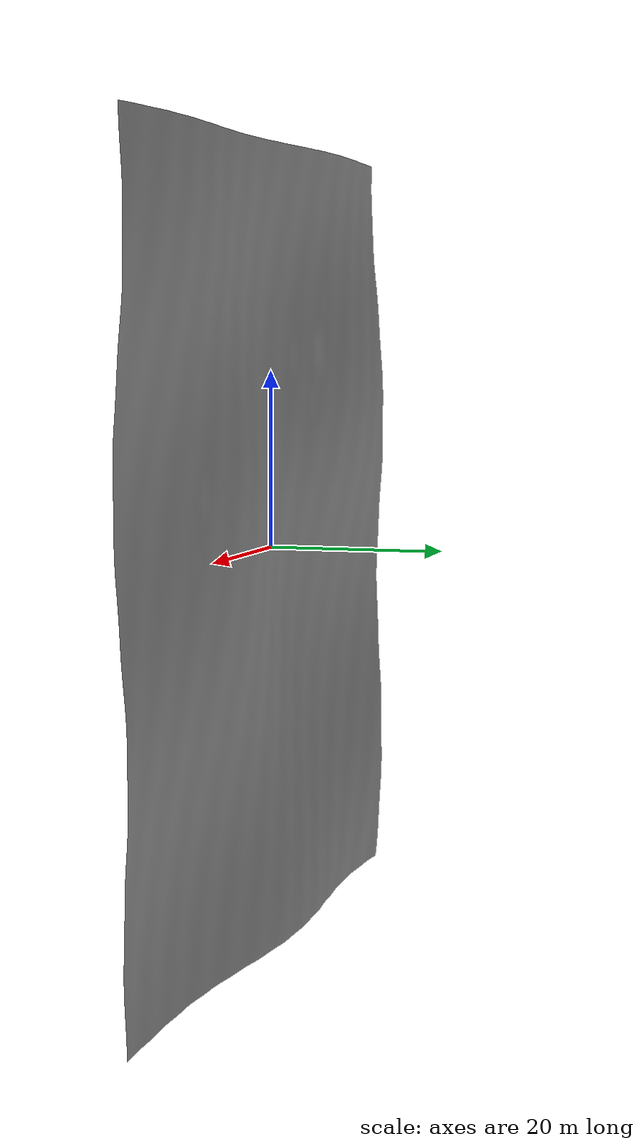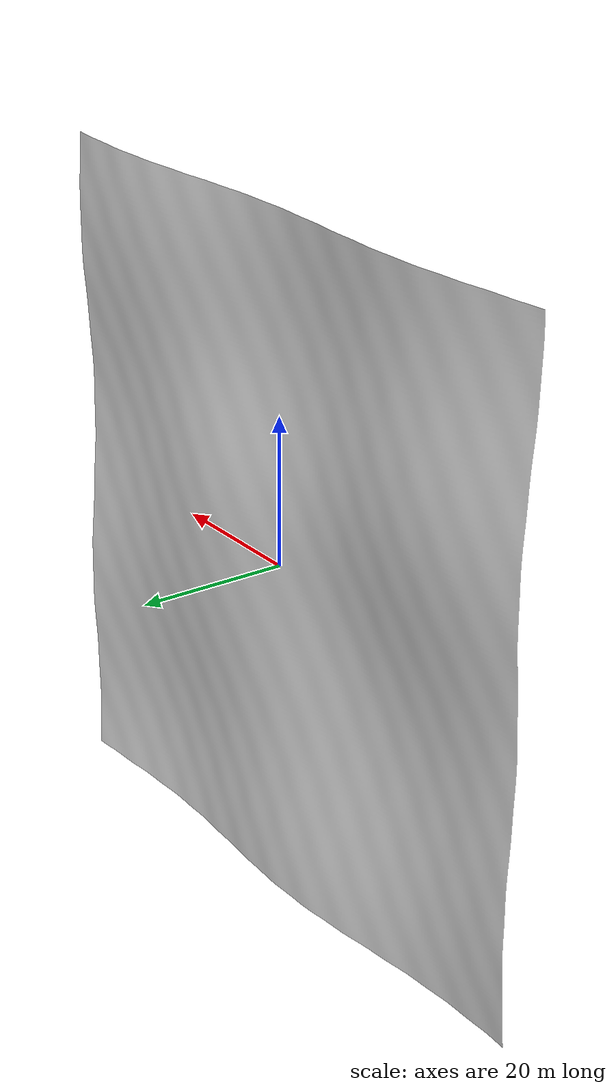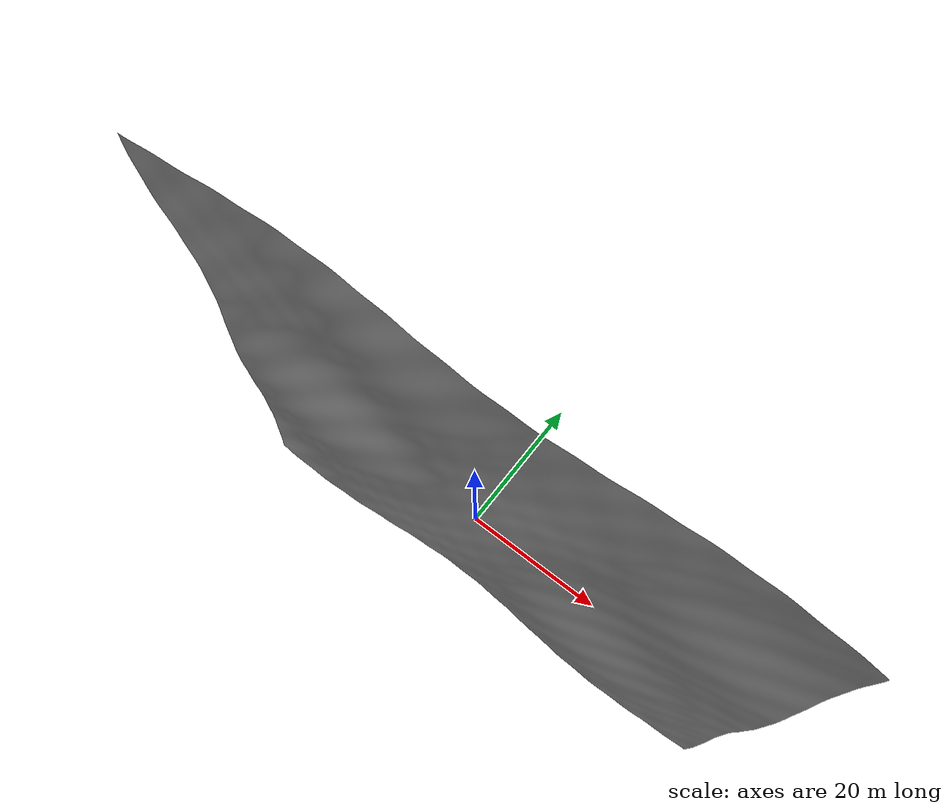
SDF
<?xml version="1.0"?>
<sdf version="1.5">
  <model name="underwater_terrain">
    <static>true</static>
    <link name="link">
      <visual name="visual">
        <geometry>
          <mesh>
            <uri>model://underwater_terrain/meshes/terrain.obj</uri>
          </mesh>
        </geometry>
      </visual>
      <collision name="collision">
        <geometry>
          <mesh>
            <uri>model://underwater_terrain/meshes/terrain.obj</uri>
          </mesh>
        </geometry>
      </collision>
    </link>
  </model>
</sdf>
